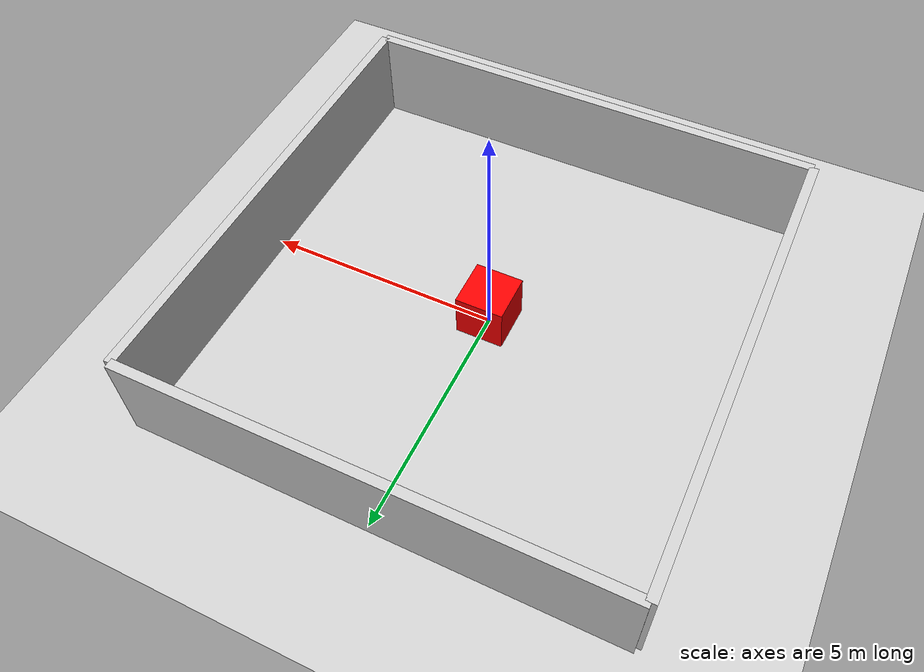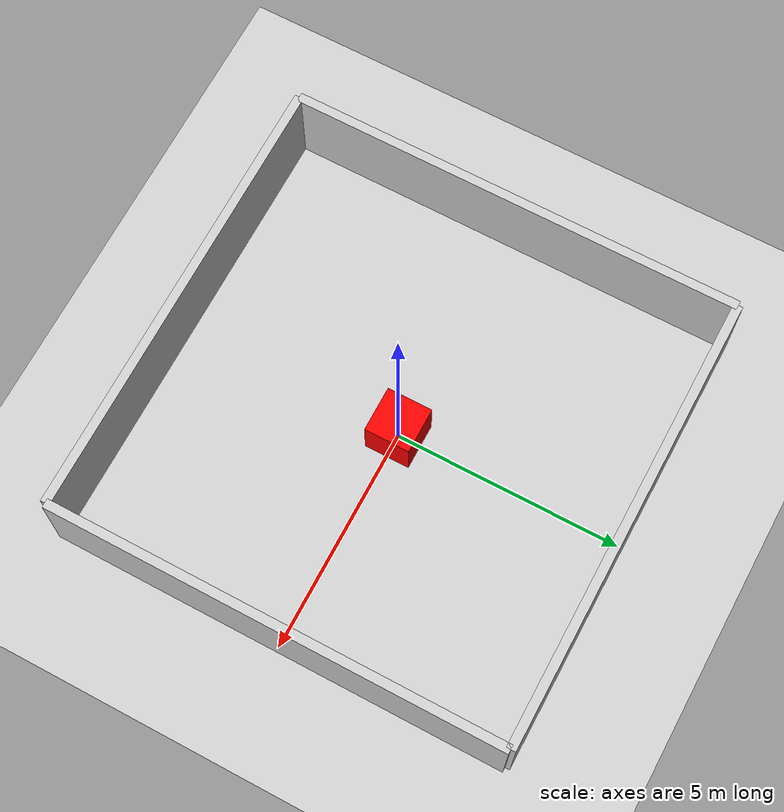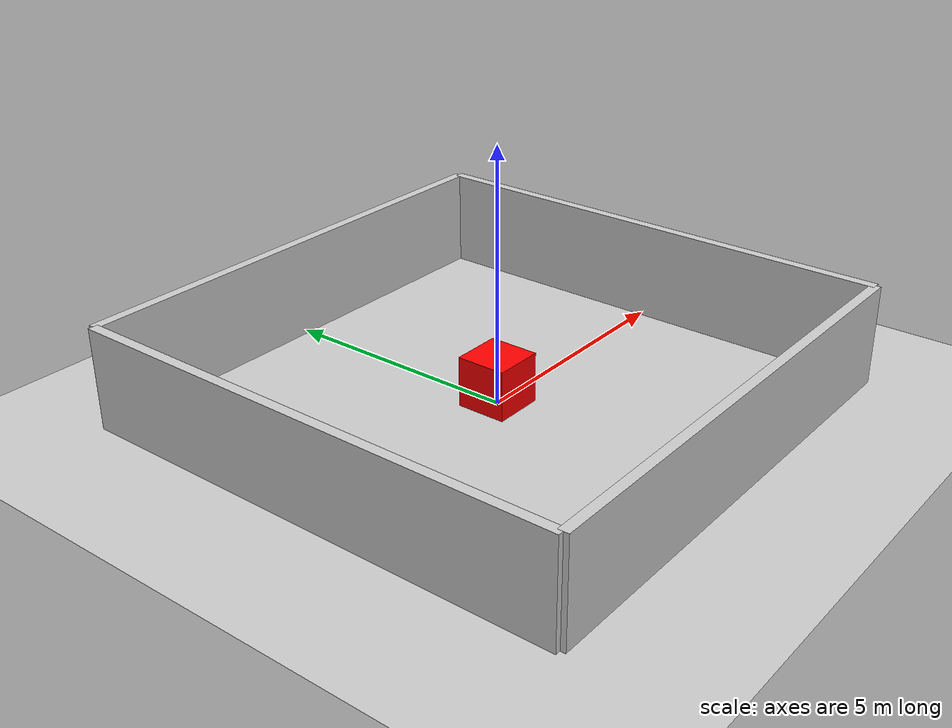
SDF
<?xml version="1.0" ?>
<sdf version="1.7">
  <world name="simple_room">
    <!-- Include default atmosphere -->
    <include>
      <uri>model://sun</uri>
    </include>

    <!-- Ground plane -->
    <include>
      <uri>model://ground_plane</uri>
    </include>

    <!-- Room walls -->
    <model name="wall_1">
      <pose>0 5 1 0 0 0</pose>
      <link name="link">
        <collision name="collision">
          <geometry>
            <box>
              <size>10 0.2 2</size>
            </box>
          </geometry>
        </collision>
        <visual name="visual">
          <geometry>
            <box>
              <size>10 0.2 2</size>
            </box>
          </geometry>
          <material>
            <ambient>0.8 0.8 0.8 1</ambient>
            <diffuse>0.8 0.8 0.8 1</diffuse>
          </material>
        </visual>
        <inertial>
          <mass>100.0</mass>
          <inertia>
            <ixx>1.0</ixx>
            <ixy>0</ixy>
            <ixz>0</ixz>
            <iyy>1.0</iyy>
            <iyz>0</iyz>
            <izz>1.0</izz>
          </inertia>
        </inertial>
      </link>
    </model>

    <model name="wall_2">
      <pose>5 0 1 0 0 1.57</pose>
      <link name="link">
        <collision name="collision">
          <geometry>
            <box>
              <size>10 0.2 2</size>
            </box>
          </geometry>
        </collision>
        <visual name="visual">
          <geometry>
            <box>
              <size>10 0.2 2</size>
            </box>
          </geometry>
          <material>
            <ambient>0.8 0.8 0.8 1</ambient>
            <diffuse>0.8 0.8 0.8 1</diffuse>
          </material>
        </visual>
        <inertial>
          <mass>100.0</mass>
          <inertia>
            <ixx>1.0</ixx>
            <ixy>0</ixy>
            <ixz>0</ixz>
            <iyy>1.0</iyy>
            <iyz>0</iyz>
            <izz>1.0</izz>
          </inertia>
        </inertial>
      </link>
    </model>

    <model name="wall_3">
      <pose>0 -5 1 0 0 0</pose>
      <link name="link">
        <collision name="collision">
          <geometry>
            <box>
              <size>10 0.2 2</size>
            </box>
          </geometry>
        </collision>
        <visual name="visual">
          <geometry>
            <box>
              <size>10 0.2 2</size>
            </box>
          </geometry>
          <material>
            <ambient>0.8 0.8 0.8 1</ambient>
            <diffuse>0.8 0.8 0.8 1</diffuse>
          </material>
        </visual>
        <inertial>
          <mass>100.0</mass>
          <inertia>
            <ixx>1.0</ixx>
            <ixy>0</ixy>
            <ixz>0</ixz>
            <iyy>1.0</iyy>
            <iyz>0</iyz>
            <izz>1.0</izz>
          </inertia>
        </inertial>
      </link>
    </model>

    <model name="wall_4">
      <pose>-5 0 1 0 0 1.57</pose>
      <link name="link">
        <collision name="collision">
          <geometry>
            <box>
              <size>10 0.2 2</size>
            </box>
          </geometry>
        </collision>
        <visual name="visual">
          <geometry>
            <box>
              <size>10 0.2 2</size>
            </box>
          </geometry>
          <material>
            <ambient>0.8 0.8 0.8 1</ambient>
            <diffuse>0.8 0.8 0.8 1</diffuse>
          </material>
        </visual>
        <inertial>
          <mass>100.0</mass>
          <inertia>
            <ixx>1.0</ixx>
            <ixy>0</ixy>
            <ixz>0</ixz>
            <iyy>1.0</iyy>
            <iyz>0</iyz>
            <izz>1.0</izz>
          </inertia>
        </inertial>
      </link>
    </model>

    <!-- Simple box obstacle -->
    <model name="obstacle">
      <pose>0 0 0.5 0 0 0</pose>
      <link name="link">
        <collision name="collision">
          <geometry>
            <box>
              <size>1 1 1</size>
            </box>
          </geometry>
        </collision>
        <visual name="visual">
          <geometry>
            <box>
              <size>1 1 1</size>
            </box>
          </geometry>
          <material>
            <ambient>1 0 0 1</ambient>
            <diffuse>1 0 0 1</diffuse>
          </material>
        </visual>
        <inertial>
          <mass>1.0</mass>
          <inertia>
            <ixx>0.166667</ixx>
            <ixy>0</ixy>
            <ixz>0</ixz>
            <iyy>0.166667</iyy>
            <iyz>0</iyz>
            <izz>0.166667</izz>
          </inertia>
        </inertial>
      </link>
    </model>
  </world>
</sdf>
